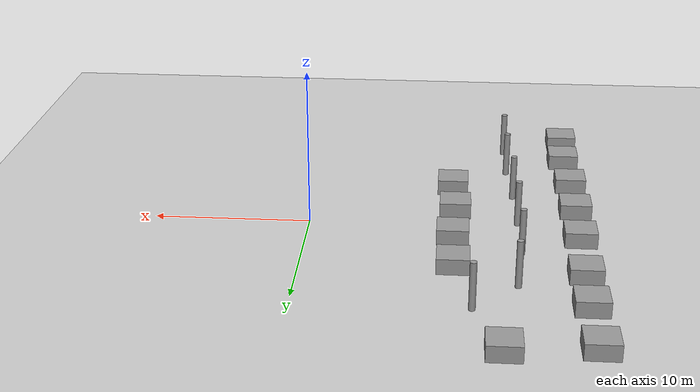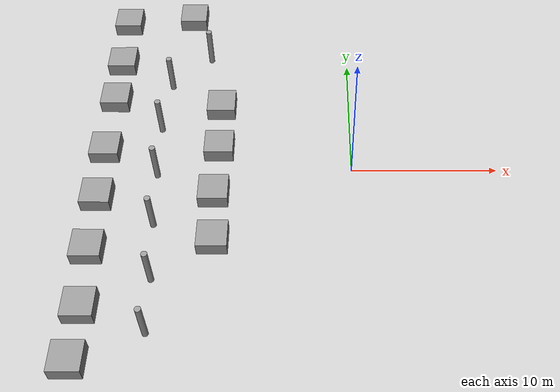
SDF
<sdf version="1.6">
 <world name="default">
  <model name="ground_plane">
   <static>1</static>
   <link name="link">
    <collision name="collision">
     <geometry><plane><normal>0 0 1</normal><size>100 100</size></plane></geometry>
     <surface><friction><ode><mu>100</mu><mu2>50</mu2></ode></friction></surface>
    </collision>
    <visual name="visual">
     <cast_shadows>0</cast_shadows>
     <geometry><plane><normal>0 0 1</normal><size>100 100</size></plane></geometry>
     <material>
      <script><uri>file://media/materials/scripts/gazebo.material</uri><name>Gazebo/Grey</name></script>
     </material>
    </visual>
   </link>
  </model>
  <model name="box3">
   <link name="link_0">
    <inertial>
     <mass>200</mass>
     <inertia><ixx>83.3333</ixx><ixy>0</ixy><ixz>0</ixz><iyy>83.3333</iyy><iyz>0</iyz><izz>133.333</izz></inertia>
     <pose>0 0 1 0 -0 0</pose>
    </inertial>
    <visual name="visual">
     <geometry><box><size>2 2 1</size></box></geometry>
     <material>
      <lighting>1</lighting>
      <script><uri>file://media/materials/scripts/gazebo.material</uri><name>Gazebo/Grey</name></script>
      <shader type="pixel"><normal_map>__default__</normal_map></shader>
      <ambient>0.3 0.3 0.3 1</ambient>
      <diffuse>0.7 0.7 0.7 1</diffuse>
      <specular>0.01 0.01 0.01 1</specular>
      <emissive>0 0 0 1</emissive>
     </material>
    </visual>
    <collision name="collision">
     <geometry><box><size>2 2 1</size></box></geometry>
     <surface>
      <friction>
       <ode><mu>1</mu><mu2>1</mu2><fdir1>0 0 0</fdir1><slip1>0</slip1><slip2>0</slip2></ode>
       <torsional>
        <coefficient>1</coefficient>
        <patch_radius>0</patch_radius>
        <surface_radius>0</surface_radius>
        <use_patch_radius>1</use_patch_radius>
        <ode><slip>0</slip></ode>
       </torsional>
      </friction>
      <bounce><restitution_coefficient>0</restitution_coefficient><threshold>1e+06</threshold></bounce>
      <contact>
       <collide_without_contact>0</collide_without_contact>
       <collide_without_contact_bitmask>1</collide_without_contact_bitmask>
       <collide_bitmask>1</collide_bitmask>
       <ode>
        <soft_cfm>0</soft_cfm>
        <soft_erp>0.2</soft_erp>
        <kp>1e+13</kp>
        <kd>1</kd>
        <max_vel>0.01</max_vel>
        <min_depth>0</min_depth>
       </ode>
       <bullet>
        <split_impulse>1</split_impulse>
        <split_impulse_penetration_threshold>-0.01</split_impulse_penetration_threshold>
        <soft_cfm>0</soft_cfm>
        <soft_erp>0.2</soft_erp>
        <kp>1e+13</kp>
        <kd>1</kd>
       </bullet>
      </contact>
     </surface>
    </collision>
   </link>
   <static>0</static>
   <pose>-17.0674 1.73296 0.5 0 -0 -0.005346</pose>
  </model>
  <model name="box3_clone">
   <link name="link_0">
    <inertial>
     <mass>200</mass>
     <inertia><ixx>83.3333</ixx><ixy>0</ixy><ixz>0</ixz><iyy>83.3333</iyy><iyz>0</iyz><izz>133.333</izz></inertia>
     <pose>0 0 1 0 -0 0</pose>
    </inertial>
    <visual name="visual">
     <geometry><box><size>2 2 1</size></box></geometry>
     <material>
      <lighting>1</lighting>
      <script><uri>file://media/materials/scripts/gazebo.material</uri><name>Gazebo/Grey</name></script>
      <shader type="pixel"><normal_map>__default__</normal_map></shader>
      <ambient>0.3 0.3 0.3 1</ambient>
      <diffuse>0.7 0.7 0.7 1</diffuse>
      <specular>0.01 0.01 0.01 1</specular>
      <emissive>0 0 0 1</emissive>
     </material>
    </visual>
    <collision name="collision">
     <geometry><box><size>2 2 1</size></box></geometry>
     <surface>
      <friction>
       <ode><mu>1</mu><mu2>1</mu2><fdir1>0 0 0</fdir1><slip1>0</slip1><slip2>0</slip2></ode>
       <torsional>
        <coefficient>1</coefficient>
        <patch_radius>0</patch_radius>
        <surface_radius>0</surface_radius>
        <use_patch_radius>1</use_patch_radius>
        <ode><slip>0</slip></ode>
       </torsional>
      </friction>
      <bounce><restitution_coefficient>0</restitution_coefficient><threshold>1e+06</threshold></bounce>
      <contact>
       <collide_without_contact>0</collide_without_contact>
       <collide_without_contact_bitmask>1</collide_without_contact_bitmask>
       <collide_bitmask>1</collide_bitmask>
       <ode>
        <soft_cfm>0</soft_cfm>
        <soft_erp>0.2</soft_erp>
        <kp>1e+13</kp>
        <kd>1</kd>
        <max_vel>0.01</max_vel>
        <min_depth>0</min_depth>
       </ode>
       <bullet>
        <split_impulse>1</split_impulse>
        <split_impulse_penetration_threshold>-0.01</split_impulse_penetration_threshold>
        <soft_cfm>0</soft_cfm>
        <soft_erp>0.2</soft_erp>
        <kp>1e+13</kp>
        <kd>1</kd>
       </bullet>
      </contact>
     </surface>
    </collision>
   </link>
   <static>0</static>
   <pose>-17.0664 -2.36654 0.499987 -3e-06 0 -0.003809</pose>
  </model>
  <model name="box3_clone_clone">
   <link name="link_0">
    <inertial>
     <mass>200</mass>
     <inertia><ixx>83.3333</ixx><ixy>0</ixy><ixz>0</ixz><iyy>83.3333</iyy><iyz>0</iyz><izz>133.333</izz></inertia>
     <pose>0 0 1 0 -0 0</pose>
    </inertial>
    <visual name="visual">
     <geometry><box><size>2 2 1</size></box></geometry>
     <material>
      <lighting>1</lighting>
      <script><uri>file://media/materials/scripts/gazebo.material</uri><name>Gazebo/Grey</name></script>
      <shader type="pixel"><normal_map>__default__</normal_map></shader>
      <ambient>0.3 0.3 0.3 1</ambient>
      <diffuse>0.7 0.7 0.7 1</diffuse>
      <specular>0.01 0.01 0.01 1</specular>
      <emissive>0 0 0 1</emissive>
     </material>
    </visual>
    <collision name="collision">
     <geometry><box><size>2 2 1</size></box></geometry>
     <surface>
      <friction>
       <ode><mu>1</mu><mu2>1</mu2><fdir1>0 0 0</fdir1><slip1>0</slip1><slip2>0</slip2></ode>
       <torsional>
        <coefficient>1</coefficient>
        <patch_radius>0</patch_radius>
        <surface_radius>0</surface_radius>
        <use_patch_radius>1</use_patch_radius>
        <ode><slip>0</slip></ode>
       </torsional>
      </friction>
      <bounce><restitution_coefficient>0</restitution_coefficient><threshold>1e+06</threshold></bounce>
      <contact>
       <collide_without_contact>0</collide_without_contact>
       <collide_without_contact_bitmask>1</collide_without_contact_bitmask>
       <collide_bitmask>1</collide_bitmask>
       <ode>
        <soft_cfm>0</soft_cfm>
        <soft_erp>0.2</soft_erp>
        <kp>1e+13</kp>
        <kd>1</kd>
        <max_vel>0.01</max_vel>
        <min_depth>0</min_depth>
       </ode>
       <bullet>
        <split_impulse>1</split_impulse>
        <split_impulse_penetration_threshold>-0.01</split_impulse_penetration_threshold>
        <soft_cfm>0</soft_cfm>
        <soft_erp>0.2</soft_erp>
        <kp>1e+13</kp>
        <kd>1</kd>
       </bullet>
      </contact>
     </surface>
    </collision>
   </link>
   <static>0</static>
   <pose>-17.0325 -6.50753 0.49999 -1e-06 0 -0.004666</pose>
  </model>
  <model name="box3_clone_clone_0">
   <link name="link_0">
    <inertial>
     <mass>200</mass>
     <inertia><ixx>83.3333</ixx><ixy>0</ixy><ixz>0</ixz><iyy>83.3333</iyy><iyz>0</iyz><izz>133.333</izz></inertia>
     <pose>0 0 1 0 -0 0</pose>
    </inertial>
    <visual name="visual">
     <geometry><box><size>2 2 1</size></box></geometry>
     <material>
      <lighting>1</lighting>
      <script><uri>file://media/materials/scripts/gazebo.material</uri><name>Gazebo/Grey</name></script>
      <shader type="pixel"><normal_map>__default__</normal_map></shader>
      <ambient>0.3 0.3 0.3 1</ambient>
      <diffuse>0.7 0.7 0.7 1</diffuse>
      <specular>0.01 0.01 0.01 1</specular>
      <emissive>0 0 0 1</emissive>
     </material>
    </visual>
    <collision name="collision">
     <geometry><box><size>2 2 1</size></box></geometry>
     <surface>
      <friction>
       <ode><mu>1</mu><mu2>1</mu2><fdir1>0 0 0</fdir1><slip1>0</slip1><slip2>0</slip2></ode>
       <torsional>
        <coefficient>1</coefficient>
        <patch_radius>0</patch_radius>
        <surface_radius>0</surface_radius>
        <use_patch_radius>1</use_patch_radius>
        <ode><slip>0</slip></ode>
       </torsional>
      </friction>
      <bounce><restitution_coefficient>0</restitution_coefficient><threshold>1e+06</threshold></bounce>
      <contact>
       <collide_without_contact>0</collide_without_contact>
       <collide_without_contact_bitmask>1</collide_without_contact_bitmask>
       <collide_bitmask>1</collide_bitmask>
       <ode>
        <soft_cfm>0</soft_cfm>
        <soft_erp>0.2</soft_erp>
        <kp>1e+13</kp>
        <kd>1</kd>
        <max_vel>0.01</max_vel>
        <min_depth>0</min_depth>
       </ode>
       <bullet>
        <split_impulse>1</split_impulse>
        <split_impulse_penetration_threshold>-0.01</split_impulse_penetration_threshold>
        <soft_cfm>0</soft_cfm>
        <soft_erp>0.2</soft_erp>
        <kp>1e+13</kp>
        <kd>1</kd>
       </bullet>
      </contact>
     </surface>
    </collision>
   </link>
   <static>0</static>
   <pose>-9.12769 -5.78631 0.5 0 -0 0.000104</pose>
  </model>
  <model name="box3_clone_clone_1">
   <link name="link_0">
    <inertial>
     <mass>200</mass>
     <inertia><ixx>83.3333</ixx><ixy>0</ixy><ixz>0</ixz><iyy>83.3333</iyy><iyz>0</iyz><izz>133.333</izz></inertia>
     <pose>0 0 1 0 -0 0</pose>
    </inertial>
    <visual name="visual">
     <geometry><box><size>2 2 1</size></box></geometry>
     <material>
      <lighting>1</lighting>
      <script><uri>file://media/materials/scripts/gazebo.material</uri><name>Gazebo/Grey</name></script>
      <shader type="pixel"><normal_map>__default__</normal_map></shader>
      <ambient>0.3 0.3 0.3 1</ambient>
      <diffuse>0.7 0.7 0.7 1</diffuse>
      <specular>0.01 0.01 0.01 1</specular>
      <emissive>0 0 0 1</emissive>
     </material>
    </visual>
    <collision name="collision">
     <geometry><box><size>2 2 1</size></box></geometry>
     <surface>
      <friction>
       <ode><mu>1</mu><mu2>1</mu2><fdir1>0 0 0</fdir1><slip1>0</slip1><slip2>0</slip2></ode>
       <torsional>
        <coefficient>1</coefficient>
        <patch_radius>0</patch_radius>
        <surface_radius>0</surface_radius>
        <use_patch_radius>1</use_patch_radius>
        <ode><slip>0</slip></ode>
       </torsional>
      </friction>
      <bounce><restitution_coefficient>0</restitution_coefficient><threshold>1e+06</threshold></bounce>
      <contact>
       <collide_without_contact>0</collide_without_contact>
       <collide_without_contact_bitmask>1</collide_without_contact_bitmask>
       <collide_bitmask>1</collide_bitmask>
       <ode>
        <soft_cfm>0</soft_cfm>
        <soft_erp>0.2</soft_erp>
        <kp>1e+13</kp>
        <kd>1</kd>
        <max_vel>0.01</max_vel>
        <min_depth>0</min_depth>
       </ode>
       <bullet>
        <split_impulse>1</split_impulse>
        <split_impulse_penetration_threshold>-0.01</split_impulse_penetration_threshold>
        <soft_cfm>0</soft_cfm>
        <soft_erp>0.2</soft_erp>
        <kp>1e+13</kp>
        <kd>1</kd>
       </bullet>
      </contact>
     </surface>
    </collision>
   </link>
   <static>0</static>
   <pose>-9.30672 -2.07253 0.5 0 -0 0.000104</pose>
  </model>
  <model name="box3_clone_clone_2">
   <link name="link_0">
    <inertial>
     <mass>200</mass>
     <inertia><ixx>83.3333</ixx><ixy>0</ixy><ixz>0</ixz><iyy>83.3333</iyy><iyz>0</iyz><izz>133.333</izz></inertia>
     <pose>0 0 1 0 -0 0</pose>
    </inertial>
    <visual name="visual">
     <geometry><box><size>2 2 1</size></box></geometry>
     <material>
      <lighting>1</lighting>
      <script><uri>file://media/materials/scripts/gazebo.material</uri><name>Gazebo/Grey</name></script>
      <shader type="pixel"><normal_map>__default__</normal_map></shader>
      <ambient>0.3 0.3 0.3 1</ambient>
      <diffuse>0.7 0.7 0.7 1</diffuse>
      <specular>0.01 0.01 0.01 1</specular>
      <emissive>0 0 0 1</emissive>
     </material>
    </visual>
    <collision name="collision">
     <geometry><box><size>2 2 1</size></box></geometry>
     <surface>
      <friction>
       <ode><mu>1</mu><mu2>1</mu2><fdir1>0 0 0</fdir1><slip1>0</slip1><slip2>0</slip2></ode>
       <torsional>
        <coefficient>1</coefficient>
        <patch_radius>0</patch_radius>
        <surface_radius>0</surface_radius>
        <use_patch_radius>1</use_patch_radius>
        <ode><slip>0</slip></ode>
       </torsional>
      </friction>
      <bounce><restitution_coefficient>0</restitution_coefficient><threshold>1e+06</threshold></bounce>
      <contact>
       <collide_without_contact>0</collide_without_contact>
       <collide_without_contact_bitmask>1</collide_without_contact_bitmask>
       <collide_bitmask>1</collide_bitmask>
       <ode>
        <soft_cfm>0</soft_cfm>
        <soft_erp>0.2</soft_erp>
        <kp>1e+13</kp>
        <kd>1</kd>
        <max_vel>0.01</max_vel>
        <min_depth>0</min_depth>
       </ode>
       <bullet>
        <split_impulse>1</split_impulse>
        <split_impulse_penetration_threshold>-0.01</split_impulse_penetration_threshold>
        <soft_cfm>0</soft_cfm>
        <soft_erp>0.2</soft_erp>
        <kp>1e+13</kp>
        <kd>1</kd>
       </bullet>
      </contact>
     </surface>
    </collision>
   </link>
   <static>0</static>
   <pose>-9.1685 1.88848 0.5 0 -0 0.000104</pose>
  </model>
  <model name="box3_clone_0">
   <link name="link_0">
    <inertial>
     <mass>200</mass>
     <inertia><ixx>83.3333</ixx><ixy>0</ixy><ixz>0</ixz><iyy>83.3333</iyy><iyz>0</iyz><izz>133.333</izz></inertia>
     <pose>0 0 1 0 -0 0</pose>
    </inertial>
    <visual name="visual">
     <geometry><box><size>2 2 1</size></box></geometry>
     <material>
      <lighting>1</lighting>
      <script><uri>file://media/materials/scripts/gazebo.material</uri><name>Gazebo/Grey</name></script>
      <shader type="pixel"><normal_map>__default__</normal_map></shader>
      <ambient>0.3 0.3 0.3 1</ambient>
      <diffuse>0.7 0.7 0.7 1</diffuse>
      <specular>0.01 0.01 0.01 1</specular>
      <emissive>0 0 0 1</emissive>
     </material>
    </visual>
    <collision name="collision">
     <geometry><box><size>2 2 1</size></box></geometry>
     <surface>
      <friction>
       <ode><mu>1</mu><mu2>1</mu2><fdir1>0 0 0</fdir1><slip1>0</slip1><slip2>0</slip2></ode>
       <torsional>
        <coefficient>1</coefficient>
        <patch_radius>0</patch_radius>
        <surface_radius>0</surface_radius>
        <use_patch_radius>1</use_patch_radius>
        <ode><slip>0</slip></ode>
       </torsional>
      </friction>
      <bounce><restitution_coefficient>0</restitution_coefficient><threshold>1e+06</threshold></bounce>
      <contact>
       <collide_without_contact>0</collide_without_contact>
       <collide_without_contact_bitmask>1</collide_without_contact_bitmask>
       <collide_bitmask>1</collide_bitmask>
       <ode>
        <soft_cfm>0</soft_cfm>
        <soft_erp>0.2</soft_erp>
        <kp>1e+13</kp>
        <kd>1</kd>
        <max_vel>0.01</max_vel>
        <min_depth>0</min_depth>
       </ode>
       <bullet>
        <split_impulse>1</split_impulse>
        <split_impulse_penetration_threshold>-0.01</split_impulse_penetration_threshold>
        <soft_cfm>0</soft_cfm>
        <soft_erp>0.2</soft_erp>
        <kp>1e+13</kp>
        <kd>1</kd>
       </bullet>
      </contact>
     </surface>
    </collision>
   </link>
   <static>0</static>
   <pose>-16.9918 6.52351 0.499986 -1e-06 3e-06 -0.005185</pose>
  </model>
  <model name="box3_clone_1">
   <link name="link_0">
    <inertial>
     <mass>200</mass>
     <inertia><ixx>83.3333</ixx><ixy>0</ixy><ixz>0</ixz><iyy>83.3333</iyy><iyz>0</iyz><izz>133.333</izz></inertia>
     <pose>0 0 1 0 -0 0</pose>
    </inertial>
    <visual name="visual">
     <geometry><box><size>2 2 1</size></box></geometry>
     <material>
      <lighting>1</lighting>
      <script><uri>file://media/materials/scripts/gazebo.material</uri><name>Gazebo/Grey</name></script>
      <shader type="pixel"><normal_map>__default__</normal_map></shader>
      <ambient>0.3 0.3 0.3 1</ambient>
      <diffuse>0.7 0.7 0.7 1</diffuse>
      <specular>0.01 0.01 0.01 1</specular>
      <emissive>0 0 0 1</emissive>
     </material>
    </visual>
    <collision name="collision">
     <geometry><box><size>2 2 1</size></box></geometry>
     <surface>
      <friction>
       <ode><mu>1</mu><mu2>1</mu2><fdir1>0 0 0</fdir1><slip1>0</slip1><slip2>0</slip2></ode>
       <torsional>
        <coefficient>1</coefficient>
        <patch_radius>0</patch_radius>
        <surface_radius>0</surface_radius>
        <use_patch_radius>1</use_patch_radius>
        <ode><slip>0</slip></ode>
       </torsional>
      </friction>
      <bounce><restitution_coefficient>0</restitution_coefficient><threshold>1e+06</threshold></bounce>
      <contact>
       <collide_without_contact>0</collide_without_contact>
       <collide_without_contact_bitmask>1</collide_without_contact_bitmask>
       <collide_bitmask>1</collide_bitmask>
       <ode>
        <soft_cfm>0</soft_cfm>
        <soft_erp>0.2</soft_erp>
        <kp>1e+13</kp>
        <kd>1</kd>
        <max_vel>0.01</max_vel>
        <min_depth>0</min_depth>
       </ode>
       <bullet>
        <split_impulse>1</split_impulse>
        <split_impulse_penetration_threshold>-0.01</split_impulse_penetration_threshold>
        <soft_cfm>0</soft_cfm>
        <soft_erp>0.2</soft_erp>
        <kp>1e+13</kp>
        <kd>1</kd>
       </bullet>
      </contact>
     </surface>
    </collision>
   </link>
   <static>0</static>
   <pose>-16.9852 10.2879 0.5 0 -0 0.000104</pose>
  </model>
  <model name="box3_clone_2">
   <link name="link_0">
    <inertial>
     <mass>200</mass>
     <inertia><ixx>83.3333</ixx><ixy>0</ixy><ixz>0</ixz><iyy>83.3333</iyy><iyz>0</iyz><izz>133.333</izz></inertia>
     <pose>0 0 1 0 -0 0</pose>
    </inertial>
    <visual name="visual">
     <geometry><box><size>2 2 1</size></box></geometry>
     <material>
      <lighting>1</lighting>
      <script><uri>file://media/materials/scripts/gazebo.material</uri><name>Gazebo/Grey</name></script>
      <shader type="pixel"><normal_map>__default__</normal_map></shader>
      <ambient>0.3 0.3 0.3 1</ambient>
      <diffuse>0.7 0.7 0.7 1</diffuse>
      <specular>0.01 0.01 0.01 1</specular>
      <emissive>0 0 0 1</emissive>
     </material>
    </visual>
    <collision name="collision">
     <geometry><box><size>2 2 1</size></box></geometry>
     <surface>
      <friction>
       <ode><mu>1</mu><mu2>1</mu2><fdir1>0 0 0</fdir1><slip1>0</slip1><slip2>0</slip2></ode>
       <torsional>
        <coefficient>1</coefficient>
        <patch_radius>0</patch_radius>
        <surface_radius>0</surface_radius>
        <use_patch_radius>1</use_patch_radius>
        <ode><slip>0</slip></ode>
       </torsional>
      </friction>
      <bounce><restitution_coefficient>0</restitution_coefficient><threshold>1e+06</threshold></bounce>
      <contact>
       <collide_without_contact>0</collide_without_contact>
       <collide_without_contact_bitmask>1</collide_without_contact_bitmask>
       <collide_bitmask>1</collide_bitmask>
       <ode>
        <soft_cfm>0</soft_cfm>
        <soft_erp>0.2</soft_erp>
        <kp>1e+13</kp>
        <kd>1</kd>
        <max_vel>0.01</max_vel>
        <min_depth>0</min_depth>
       </ode>
       <bullet>
        <split_impulse>1</split_impulse>
        <split_impulse_penetration_threshold>-0.01</split_impulse_penetration_threshold>
        <soft_cfm>0</soft_cfm>
        <soft_erp>0.2</soft_erp>
        <kp>1e+13</kp>
        <kd>1</kd>
       </bullet>
      </contact>
     </surface>
    </collision>
   </link>
   <static>0</static>
   <pose>-17.0624 14.7411 0.5 0 -0 0.000104</pose>
  </model>
  <model name="box3_clone_3">
   <link name="link_0">
    <inertial>
     <mass>200</mass>
     <inertia><ixx>83.3333</ixx><ixy>0</ixy><ixz>0</ixz><iyy>83.3333</iyy><iyz>0</iyz><izz>133.333</izz></inertia>
     <pose>0 0 1 0 -0 0</pose>
    </inertial>
    <visual name="visual">
     <geometry><box><size>2 2 1</size></box></geometry>
     <material>
      <lighting>1</lighting>
      <script><uri>file://media/materials/scripts/gazebo.material</uri><name>Gazebo/Grey</name></script>
      <shader type="pixel"><normal_map>__default__</normal_map></shader>
      <ambient>0.3 0.3 0.3 1</ambient>
      <diffuse>0.7 0.7 0.7 1</diffuse>
      <specular>0.01 0.01 0.01 1</specular>
      <emissive>0 0 0 1</emissive>
     </material>
    </visual>
    <collision name="collision">
     <geometry><box><size>2 2 1</size></box></geometry>
     <surface>
      <friction>
       <ode><mu>1</mu><mu2>1</mu2><fdir1>0 0 0</fdir1><slip1>0</slip1><slip2>0</slip2></ode>
       <torsional>
        <coefficient>1</coefficient>
        <patch_radius>0</patch_radius>
        <surface_radius>0</surface_radius>
        <use_patch_radius>1</use_patch_radius>
        <ode><slip>0</slip></ode>
       </torsional>
      </friction>
      <bounce><restitution_coefficient>0</restitution_coefficient><threshold>1e+06</threshold></bounce>
      <contact>
       <collide_without_contact>0</collide_without_contact>
       <collide_without_contact_bitmask>1</collide_without_contact_bitmask>
       <collide_bitmask>1</collide_bitmask>
       <ode>
        <soft_cfm>0</soft_cfm>
        <soft_erp>0.2</soft_erp>
        <kp>1e+13</kp>
        <kd>1</kd>
        <max_vel>0.01</max_vel>
        <min_depth>0</min_depth>
       </ode>
       <bullet>
        <split_impulse>1</split_impulse>
        <split_impulse_penetration_threshold>-0.01</split_impulse_penetration_threshold>
        <soft_cfm>0</soft_cfm>
        <soft_erp>0.2</soft_erp>
        <kp>1e+13</kp>
        <kd>1</kd>
       </bullet>
      </contact>
     </surface>
    </collision>
   </link>
   <static>0</static>
   <pose>-9.22346 5.76728 0.5 0 -0 0.000104</pose>
  </model>
  <model name="box3_clone_4">
   <link name="link_0">
    <inertial>
     <mass>200</mass>
     <inertia><ixx>83.3333</ixx><ixy>0</ixy><ixz>0</ixz><iyy>83.3333</iyy><iyz>0</iyz><izz>133.333</izz></inertia>
     <pose>0 0 1 0 -0 0</pose>
    </inertial>
    <visual name="visual">
     <geometry><box><size>2 2 1</size></box></geometry>
     <material>
      <lighting>1</lighting>
      <script><uri>file://media/materials/scripts/gazebo.material</uri><name>Gazebo/Grey</name></script>
      <shader type="pixel"><normal_map>__default__</normal_map></shader>
      <ambient>0.3 0.3 0.3 1</ambient>
      <diffuse>0.7 0.7 0.7 1</diffuse>
      <specular>0.01 0.01 0.01 1</specular>
      <emissive>0 0 0 1</emissive>
     </material>
    </visual>
    <collision name="collision">
     <geometry><box><size>2 2 1</size></box></geometry>
     <surface>
      <friction>
       <ode><mu>1</mu><mu2>1</mu2><fdir1>0 0 0</fdir1><slip1>0</slip1><slip2>0</slip2></ode>
       <torsional>
        <coefficient>1</coefficient>
        <patch_radius>0</patch_radius>
        <surface_radius>0</surface_radius>
        <use_patch_radius>1</use_patch_radius>
        <ode><slip>0</slip></ode>
       </torsional>
      </friction>
      <bounce><restitution_coefficient>0</restitution_coefficient><threshold>1e+06</threshold></bounce>
      <contact>
       <collide_without_contact>0</collide_without_contact>
       <collide_without_contact_bitmask>1</collide_without_contact_bitmask>
       <collide_bitmask>1</collide_bitmask>
       <ode>
        <soft_cfm>0</soft_cfm>
        <soft_erp>0.2</soft_erp>
        <kp>1e+13</kp>
        <kd>1</kd>
        <max_vel>0.01</max_vel>
        <min_depth>0</min_depth>
       </ode>
       <bullet>
        <split_impulse>1</split_impulse>
        <split_impulse_penetration_threshold>-0.01</split_impulse_penetration_threshold>
        <soft_cfm>0</soft_cfm>
        <soft_erp>0.2</soft_erp>
        <kp>1e+13</kp>
        <kd>1</kd>
       </bullet>
      </contact>
     </surface>
    </collision>
   </link>
   <static>0</static>
   <pose>-11.9721 15.2785 0.5 0 -0 0.000104</pose>
  </model>
  <model name="box3_clone_12_clone_3">
   <link name="link_0">
    <inertial>
     <mass>200</mass>
     <inertia><ixx>83.3333</ixx><ixy>0</ixy><ixz>0</ixz><iyy>83.3333</iyy><iyz>0</iyz><izz>133.333</izz></inertia>
     <pose>0 0 1 0 -0 0</pose>
    </inertial>
    <visual name="visual">
     <geometry><box><size>2 2 1</size></box></geometry>
     <material>
      <lighting>1</lighting>
      <script><uri>file://media/materials/scripts/gazebo.material</uri><name>Gazebo/Grey</name></script>
      <shader type="pixel"><normal_map>__default__</normal_map></shader>
      <ambient>0.3 0.3 0.3 1</ambient>
      <diffuse>0.7 0.7 0.7 1</diffuse>
      <specular>0.01 0.01 0.01 1</specular>
      <emissive>0 0 0 1</emissive>
     </material>
    </visual>
    <collision name="collision">
     <geometry><box><size>2 2 1</size></box></geometry>
     <surface>
      <friction>
       <ode><mu>1</mu><mu2>1</mu2><fdir1>0 0 0</fdir1><slip1>0</slip1><slip2>0</slip2></ode>
       <torsional>
        <coefficient>1</coefficient>
        <patch_radius>0</patch_radius>
        <surface_radius>0</surface_radius>
        <use_patch_radius>1</use_patch_radius>
        <ode><slip>0</slip></ode>
       </torsional>
      </friction>
      <bounce><restitution_coefficient>0</restitution_coefficient><threshold>1e+06</threshold></bounce>
      <contact>
       <collide_without_contact>0</collide_without_contact>
       <collide_without_contact_bitmask>1</collide_without_contact_bitmask>
       <collide_bitmask>1</collide_bitmask>
       <ode>
        <soft_cfm>0</soft_cfm>
        <soft_erp>0.2</soft_erp>
        <kp>1e+13</kp>
        <kd>1</kd>
        <max_vel>0.01</max_vel>
        <min_depth>0</min_depth>
       </ode>
       <bullet>
        <split_impulse>1</split_impulse>
        <split_impulse_penetration_threshold>-0.01</split_impulse_penetration_threshold>
        <soft_cfm>0</soft_cfm>
        <soft_erp>0.2</soft_erp>
        <kp>1e+13</kp>
        <kd>1</kd>
       </bullet>
      </contact>
     </surface>
    </collision>
   </link>
   <static>0</static>
   <pose>-16.8338 -10.7024 0.499983 2e-06 2e-06 -0.000535</pose>
  </model>
  <model name="box3_clone_12_clone_4">
   <link name="link_0">
    <inertial>
     <mass>200</mass>
     <inertia><ixx>83.3333</ixx><ixy>0</ixy><ixz>0</ixz><iyy>83.3333</iyy><iyz>0</iyz><izz>133.333</izz></inertia>
     <pose>0 0 1 0 -0 0</pose>
    </inertial>
    <visual name="visual">
     <geometry><box><size>2 2 1</size></box></geometry>
     <material>
      <lighting>1</lighting>
      <script><uri>file://media/materials/scripts/gazebo.material</uri><name>Gazebo/Grey</name></script>
      <shader type="pixel"><normal_map>__default__</normal_map></shader>
      <ambient>0.3 0.3 0.3 1</ambient>
      <diffuse>0.7 0.7 0.7 1</diffuse>
      <specular>0.01 0.01 0.01 1</specular>
      <emissive>0 0 0 1</emissive>
     </material>
    </visual>
    <collision name="collision">
     <geometry><box><size>2 2 1</size></box></geometry>
     <surface>
      <friction>
       <ode><mu>1</mu><mu2>1</mu2><fdir1>0 0 0</fdir1><slip1>0</slip1><slip2>0</slip2></ode>
       <torsional>
        <coefficient>1</coefficient>
        <patch_radius>0</patch_radius>
        <surface_radius>0</surface_radius>
        <use_patch_radius>1</use_patch_radius>
        <ode><slip>0</slip></ode>
       </torsional>
      </friction>
      <bounce><restitution_coefficient>0</restitution_coefficient><threshold>1e+06</threshold></bounce>
      <contact>
       <collide_without_contact>0</collide_without_contact>
       <collide_without_contact_bitmask>1</collide_without_contact_bitmask>
       <collide_bitmask>1</collide_bitmask>
       <ode>
        <soft_cfm>0</soft_cfm>
        <soft_erp>0.2</soft_erp>
        <kp>1e+13</kp>
        <kd>1</kd>
        <max_vel>0.01</max_vel>
        <min_depth>0</min_depth>
       </ode>
       <bullet>
        <split_impulse>1</split_impulse>
        <split_impulse_penetration_threshold>-0.01</split_impulse_penetration_threshold>
        <soft_cfm>0</soft_cfm>
        <soft_erp>0.2</soft_erp>
        <kp>1e+13</kp>
        <kd>1</kd>
       </bullet>
      </contact>
     </surface>
    </collision>
   </link>
   <static>0</static>
   <pose>-16.941 -14.2486 0.5 0 0 -0.000996</pose>
  </model>
  <model name="pole">
   <link name="link_0">
    <inertial>
     <mass>1</mass>
     <inertia><ixx>0.145833</ixx><ixy>0</ixy><ixz>0</ixz><iyy>0.145833</iyy><iyz>0</iyz><izz>0.125</izz></inertia>
    </inertial>
    <visual name="visual">
     <pose>0 0 1 0 -0 0</pose>
     <geometry><cylinder><radius>0.2</radius><length>3</length></cylinder></geometry>
     <material>
      <lighting>1</lighting>
      <script><uri>file://media/materials/scripts/gazebo.material</uri><name>Gazebo/Grey</name></script>
      <shader type="pixel"><normal_map>__default__</normal_map></shader>
      <ambient>0.3 0.3 0.3 1</ambient>
      <diffuse>0.7 0.7 0.7 1</diffuse>
      <specular>0.01 0.01 0.01 1</specular>
      <emissive>0 0 0 1</emissive>
     </material>
    </visual>
    <collision name="collision">
     <pose>0 0 1 0 -0 0</pose>
     <geometry><cylinder><radius>0.2</radius><length>3</length></cylinder></geometry>
     <surface>
      <friction>
       <ode><mu>1</mu><mu2>1</mu2><fdir1>0 0 0</fdir1><slip1>0</slip1><slip2>0</slip2></ode>
       <torsional>
        <coefficient>1</coefficient>
        <patch_radius>0</patch_radius>
        <surface_radius>0</surface_radius>
        <use_patch_radius>1</use_patch_radius>
        <ode><slip>0</slip></ode>
       </torsional>
      </friction>
      <bounce><restitution_coefficient>0</restitution_coefficient><threshold>1e+06</threshold></bounce>
      <contact>
       <collide_without_contact>0</collide_without_contact>
       <collide_without_contact_bitmask>1</collide_without_contact_bitmask>
       <collide_bitmask>1</collide_bitmask>
       <ode>
        <soft_cfm>0</soft_cfm>
        <soft_erp>0.2</soft_erp>
        <kp>1e+13</kp>
        <kd>1</kd>
        <max_vel>0.01</max_vel>
        <min_depth>0</min_depth>
       </ode>
       <bullet>
        <split_impulse>1</split_impulse>
        <split_impulse_penetration_threshold>-0.01</split_impulse_penetration_threshold>
        <soft_cfm>0</soft_cfm>
        <soft_erp>0.2</soft_erp>
        <kp>1e+13</kp>
        <kd>1</kd>
       </bullet>
      </contact>
     </surface>
    </collision>
   </link>
   <static>0</static>
   <pose>-13.0218 7.95239 0.5 0 -0 2e-06</pose>
  </model>
  <model name="pole_clone">
   <link name="link_0">
    <inertial>
     <mass>1</mass>
     <inertia><ixx>0.145833</ixx><ixy>0</ixy><ixz>0</ixz><iyy>0.145833</iyy><iyz>0</iyz><izz>0.125</izz></inertia>
    </inertial>
    <visual name="visual">
     <pose>0 0 1 0 -0 0</pose>
     <geometry><cylinder><radius>0.2</radius><length>3</length></cylinder></geometry>
     <material>
      <lighting>1</lighting>
      <script><uri>file://media/materials/scripts/gazebo.material</uri><name>Gazebo/Grey</name></script>
      <shader type="pixel"><normal_map>__default__</normal_map></shader>
      <ambient>0.3 0.3 0.3 1</ambient>
      <diffuse>0.7 0.7 0.7 1</diffuse>
      <specular>0.01 0.01 0.01 1</specular>
      <emissive>0 0 0 1</emissive>
     </material>
    </visual>
    <collision name="collision">
     <pose>0 0 1 0 -0 0</pose>
     <geometry><cylinder><radius>0.2</radius><length>3</length></cylinder></geometry>
     <surface>
      <friction>
       <ode><mu>1</mu><mu2>1</mu2><fdir1>0 0 0</fdir1><slip1>0</slip1><slip2>0</slip2></ode>
       <torsional>
        <coefficient>1</coefficient>
        <patch_radius>0</patch_radius>
        <surface_radius>0</surface_radius>
        <use_patch_radius>1</use_patch_radius>
        <ode><slip>0</slip></ode>
       </torsional>
      </friction>
      <bounce><restitution_coefficient>0</restitution_coefficient><threshold>1e+06</threshold></bounce>
      <contact>
       <collide_without_contact>0</collide_without_contact>
       <collide_without_contact_bitmask>1</collide_without_contact_bitmask>
       <collide_bitmask>1</collide_bitmask>
       <ode>
        <soft_cfm>0</soft_cfm>
        <soft_erp>0.2</soft_erp>
        <kp>1e+13</kp>
        <kd>1</kd>
        <max_vel>0.01</max_vel>
        <min_depth>0</min_depth>
       </ode>
       <bullet>
        <split_impulse>1</split_impulse>
        <split_impulse_penetration_threshold>-0.01</split_impulse_penetration_threshold>
        <soft_cfm>0</soft_cfm>
        <soft_erp>0.2</soft_erp>
        <kp>1e+13</kp>
        <kd>1</kd>
       </bullet>
      </contact>
     </surface>
    </collision>
   </link>
   <static>0</static>
   <pose>-13.3827 3.72812 0.5 0 -0 2e-06</pose>
  </model>
  <model name="pole_clone_0">
   <link name="link_0">
    <inertial>
     <mass>1</mass>
     <inertia><ixx>0.145833</ixx><ixy>0</ixy><ixz>0</ixz><iyy>0.145833</iyy><iyz>0</iyz><izz>0.125</izz></inertia>
    </inertial>
    <visual name="visual">
     <pose>0 0 1 0 -0 0</pose>
     <geometry><cylinder><radius>0.2</radius><length>3</length></cylinder></geometry>
     <material>
      <lighting>1</lighting>
      <script><uri>file://media/materials/scripts/gazebo.material</uri><name>Gazebo/Grey</name></script>
      <shader type="pixel"><normal_map>__default__</normal_map></shader>
      <ambient>0.3 0.3 0.3 1</ambient>
      <diffuse>0.7 0.7 0.7 1</diffuse>
      <specular>0.01 0.01 0.01 1</specular>
      <emissive>0 0 0 1</emissive>
     </material>
    </visual>
    <collision name="collision">
     <pose>0 0 1 0 -0 0</pose>
     <geometry><cylinder><radius>0.2</radius><length>3</length></cylinder></geometry>
     <surface>
      <friction>
       <ode><mu>1</mu><mu2>1</mu2><fdir1>0 0 0</fdir1><slip1>0</slip1><slip2>0</slip2></ode>
       <torsional>
        <coefficient>1</coefficient>
        <patch_radius>0</patch_radius>
        <surface_radius>0</surface_radius>
        <use_patch_radius>1</use_patch_radius>
        <ode><slip>0</slip></ode>
       </torsional>
      </friction>
      <bounce><restitution_coefficient>0</restitution_coefficient><threshold>1e+06</threshold></bounce>
      <contact>
       <collide_without_contact>0</collide_without_contact>
       <collide_without_contact_bitmask>1</collide_without_contact_bitmask>
       <collide_bitmask>1</collide_bitmask>
       <ode>
        <soft_cfm>0</soft_cfm>
        <soft_erp>0.2</soft_erp>
        <kp>1e+13</kp>
        <kd>1</kd>
        <max_vel>0.01</max_vel>
        <min_depth>0</min_depth>
       </ode>
       <bullet>
        <split_impulse>1</split_impulse>
        <split_impulse_penetration_threshold>-0.01</split_impulse_penetration_threshold>
        <soft_cfm>0</soft_cfm>
        <soft_erp>0.2</soft_erp>
        <kp>1e+13</kp>
        <kd>1</kd>
       </bullet>
      </contact>
     </surface>
    </collision>
   </link>
   <static>0</static>
   <pose>-13.2767 -0.421371 0.5 0 -0 2e-06</pose>
  </model>
  <model name="pole_clone_1">
   <link name="link_0">
    <inertial>
     <mass>1</mass>
     <inertia><ixx>0.145833</ixx><ixy>0</ixy><ixz>0</ixz><iyy>0.145833</iyy><iyz>0</iyz><izz>0.125</izz></inertia>
    </inertial>
    <visual name="visual">
     <pose>0 0 1 0 -0 0</pose>
     <geometry><cylinder><radius>0.2</radius><length>3</length></cylinder></geometry>
     <material>
      <lighting>1</lighting>
      <script><uri>file://media/materials/scripts/gazebo.material</uri><name>Gazebo/Grey</name></script>
      <shader type="pixel"><normal_map>__default__</normal_map></shader>
      <ambient>0.3 0.3 0.3 1</ambient>
      <diffuse>0.7 0.7 0.7 1</diffuse>
      <specular>0.01 0.01 0.01 1</specular>
      <emissive>0 0 0 1</emissive>
     </material>
    </visual>
    <collision name="collision">
     <pose>0 0 1 0 -0 0</pose>
     <geometry><cylinder><radius>0.2</radius><length>3</length></cylinder></geometry>
     <surface>
      <friction>
       <ode><mu>1</mu><mu2>1</mu2><fdir1>0 0 0</fdir1><slip1>0</slip1><slip2>0</slip2></ode>
       <torsional>
        <coefficient>1</coefficient>
        <patch_radius>0</patch_radius>
        <surface_radius>0</surface_radius>
        <use_patch_radius>1</use_patch_radius>
        <ode><slip>0</slip></ode>
       </torsional>
      </friction>
      <bounce><restitution_coefficient>0</restitution_coefficient><threshold>1e+06</threshold></bounce>
      <contact>
       <collide_without_contact>0</collide_without_contact>
       <collide_without_contact_bitmask>1</collide_without_contact_bitmask>
       <collide_bitmask>1</collide_bitmask>
       <ode>
        <soft_cfm>0</soft_cfm>
        <soft_erp>0.2</soft_erp>
        <kp>1e+13</kp>
        <kd>1</kd>
        <max_vel>0.01</max_vel>
        <min_depth>0</min_depth>
       </ode>
       <bullet>
        <split_impulse>1</split_impulse>
        <split_impulse_penetration_threshold>-0.01</split_impulse_penetration_threshold>
        <soft_cfm>0</soft_cfm>
        <soft_erp>0.2</soft_erp>
        <kp>1e+13</kp>
        <kd>1</kd>
       </bullet>
      </contact>
     </surface>
    </collision>
   </link>
   <static>0</static>
   <pose>-13.1071 -4.53656 0.5 0 -0 2e-06</pose>
  </model>
  <model name="pole_clone_2">
   <link name="link_0">
    <inertial>
     <mass>1</mass>
     <inertia><ixx>0.145833</ixx><ixy>0</ixy><ixz>0</ixz><iyy>0.145833</iyy><iyz>0</iyz><izz>0.125</izz></inertia>
    </inertial>
    <visual name="visual">
     <pose>0 0 1 0 -0 0</pose>
     <geometry><cylinder><radius>0.2</radius><length>3</length></cylinder></geometry>
     <material>
      <lighting>1</lighting>
      <script><uri>file://media/materials/scripts/gazebo.material</uri><name>Gazebo/Grey</name></script>
      <shader type="pixel"><normal_map>__default__</normal_map></shader>
      <ambient>0.3 0.3 0.3 1</ambient>
      <diffuse>0.7 0.7 0.7 1</diffuse>
      <specular>0.01 0.01 0.01 1</specular>
      <emissive>0 0 0 1</emissive>
     </material>
    </visual>
    <collision name="collision">
     <pose>0 0 1 0 -0 0</pose>
     <geometry><cylinder><radius>0.2</radius><length>3</length></cylinder></geometry>
     <surface>
      <friction>
       <ode><mu>1</mu><mu2>1</mu2><fdir1>0 0 0</fdir1><slip1>0</slip1><slip2>0</slip2></ode>
       <torsional>
        <coefficient>1</coefficient>
        <patch_radius>0</patch_radius>
        <surface_radius>0</surface_radius>
        <use_patch_radius>1</use_patch_radius>
        <ode><slip>0</slip></ode>
       </torsional>
      </friction>
      <bounce><restitution_coefficient>0</restitution_coefficient><threshold>1e+06</threshold></bounce>
      <contact>
       <collide_without_contact>0</collide_without_contact>
       <collide_without_contact_bitmask>1</collide_without_contact_bitmask>
       <collide_bitmask>1</collide_bitmask>
       <ode>
        <soft_cfm>0</soft_cfm>
        <soft_erp>0.2</soft_erp>
        <kp>1e+13</kp>
        <kd>1</kd>
        <max_vel>0.01</max_vel>
        <min_depth>0</min_depth>
       </ode>
       <bullet>
        <split_impulse>1</split_impulse>
        <split_impulse_penetration_threshold>-0.01</split_impulse_penetration_threshold>
        <soft_cfm>0</soft_cfm>
        <soft_erp>0.2</soft_erp>
        <kp>1e+13</kp>
        <kd>1</kd>
       </bullet>
      </contact>
     </surface>
    </collision>
   </link>
   <static>0</static>
   <pose>-12.7951 -8.67097 0.5 0 -0 2e-06</pose>
  </model>
  <model name="pole_clone_3">
   <link name="link_0">
    <inertial>
     <mass>1</mass>
     <inertia><ixx>0.145833</ixx><ixy>0</ixy><ixz>0</ixz><iyy>0.145833</iyy><iyz>0</iyz><izz>0.125</izz></inertia>
    </inertial>
    <visual name="visual">
     <pose>0 0 1 0 -0 0</pose>
     <geometry><cylinder><radius>0.2</radius><length>3</length></cylinder></geometry>
     <material>
      <lighting>1</lighting>
      <script><uri>file://media/materials/scripts/gazebo.material</uri><name>Gazebo/Grey</name></script>
      <shader type="pixel"><normal_map>__default__</normal_map></shader>
      <ambient>0.3 0.3 0.3 1</ambient>
      <diffuse>0.7 0.7 0.7 1</diffuse>
      <specular>0.01 0.01 0.01 1</specular>
      <emissive>0 0 0 1</emissive>
     </material>
    </visual>
    <collision name="collision">
     <pose>0 0 1 0 -0 0</pose>
     <geometry><cylinder><radius>0.2</radius><length>3</length></cylinder></geometry>
     <surface>
      <friction>
       <ode><mu>1</mu><mu2>1</mu2><fdir1>0 0 0</fdir1><slip1>0</slip1><slip2>0</slip2></ode>
       <torsional>
        <coefficient>1</coefficient>
        <patch_radius>0</patch_radius>
        <surface_radius>0</surface_radius>
        <use_patch_radius>1</use_patch_radius>
        <ode><slip>0</slip></ode>
       </torsional>
      </friction>
      <bounce><restitution_coefficient>0</restitution_coefficient><threshold>1e+06</threshold></bounce>
      <contact>
       <collide_without_contact>0</collide_without_contact>
       <collide_without_contact_bitmask>1</collide_without_contact_bitmask>
       <collide_bitmask>1</collide_bitmask>
       <ode>
        <soft_cfm>0</soft_cfm>
        <soft_erp>0.2</soft_erp>
        <kp>1e+13</kp>
        <kd>1</kd>
        <max_vel>0.01</max_vel>
        <min_depth>0</min_depth>
       </ode>
       <bullet>
        <split_impulse>1</split_impulse>
        <split_impulse_penetration_threshold>-0.01</split_impulse_penetration_threshold>
        <soft_cfm>0</soft_cfm>
        <soft_erp>0.2</soft_erp>
        <kp>1e+13</kp>
        <kd>1</kd>
       </bullet>
      </contact>
     </surface>
    </collision>
   </link>
   <static>0</static>
   <pose>-12.7023 -12.3876 0.5 0 -0 2e-06</pose>
  </model>
  <model name="pole_clone_4">
   <link name="link_0">
    <inertial>
     <mass>1</mass>
     <inertia><ixx>0.145833</ixx><ixy>0</ixy><ixz>0</ixz><iyy>0.145833</iyy><iyz>0</iyz><izz>0.125</izz></inertia>
    </inertial>
    <visual name="visual">
     <pose>0 0 1 0 -0 0</pose>
     <geometry><cylinder><radius>0.2</radius><length>3</length></cylinder></geometry>
     <material>
      <lighting>1</lighting>
      <script><uri>file://media/materials/scripts/gazebo.material</uri><name>Gazebo/Grey</name></script>
      <shader type="pixel"><normal_map>__default__</normal_map></shader>
      <ambient>0.3 0.3 0.3 1</ambient>
      <diffuse>0.7 0.7 0.7 1</diffuse>
      <specular>0.01 0.01 0.01 1</specular>
      <emissive>0 0 0 1</emissive>
     </material>
    </visual>
    <collision name="collision">
     <pose>0 0 1 0 -0 0</pose>
     <geometry><cylinder><radius>0.2</radius><length>3</length></cylinder></geometry>
     <surface>
      <friction>
       <ode><mu>1</mu><mu2>1</mu2><fdir1>0 0 0</fdir1><slip1>0</slip1><slip2>0</slip2></ode>
       <torsional>
        <coefficient>1</coefficient>
        <patch_radius>0</patch_radius>
        <surface_radius>0</surface_radius>
        <use_patch_radius>1</use_patch_radius>
        <ode><slip>0</slip></ode>
       </torsional>
      </friction>
      <bounce><restitution_coefficient>0</restitution_coefficient><threshold>1e+06</threshold></bounce>
      <contact>
       <collide_without_contact>0</collide_without_contact>
       <collide_without_contact_bitmask>1</collide_without_contact_bitmask>
       <collide_bitmask>1</collide_bitmask>
       <ode>
        <soft_cfm>0</soft_cfm>
        <soft_erp>0.2</soft_erp>
        <kp>1e+13</kp>
        <kd>1</kd>
        <max_vel>0.01</max_vel>
        <min_depth>0</min_depth>
       </ode>
       <bullet>
        <split_impulse>1</split_impulse>
        <split_impulse_penetration_threshold>-0.01</split_impulse_penetration_threshold>
        <soft_cfm>0</soft_cfm>
        <soft_erp>0.2</soft_erp>
        <kp>1e+13</kp>
        <kd>1</kd>
       </bullet>
      </contact>
     </surface>
    </collision>
   </link>
   <static>0</static>
   <pose>-10.3304 10.7927 0.5 0 -0 2e-06</pose>
  </model>
 </world>
</sdf>
